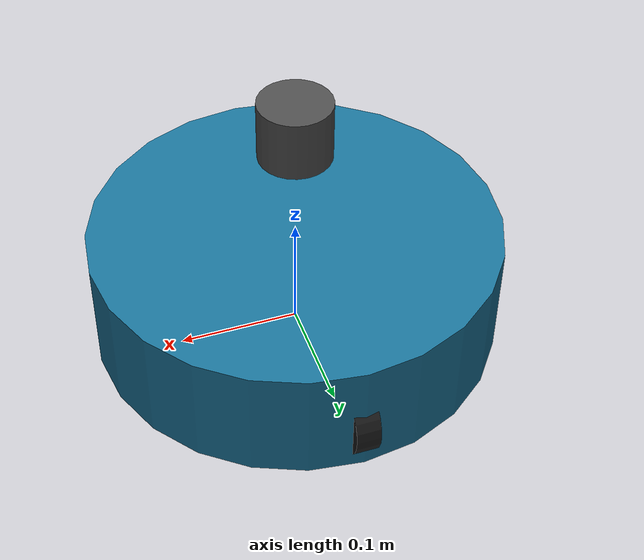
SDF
<?xml version="1.0"?>
<sdf version="1.8">
  <model name="turtlebot3_waffle_gz">
    <pose>0 0 0 0 0 0</pose>
    <static>false</static>

    <link name="base_link">
      <pose>0 0 0.05 0 0 0</pose>
      <inertial>
        <mass>1.0</mass>
        <inertia>
          <ixx>0.02</ixx>
          <iyy>0.04</iyy>
          <izz>0.04</izz>
        </inertia>
      </inertial>
      <collision name="base_collision">
        <geometry>
          <cylinder>
            <radius>0.17</radius>
            <length>0.10</length>
          </cylinder>
        </geometry>
      </collision>
      <visual name="base_visual">
        <geometry>
          <cylinder>
            <radius>0.17</radius>
            <length>0.10</length>
          </cylinder>
        </geometry>
        <material>
          <ambient>0.1 0.45 0.6 1</ambient>
          <diffuse>0.1 0.45 0.6 1</diffuse>
        </material>
      </visual>
    </link>

    <link name="left_wheel_link">
      <pose>0 0.144 0.033 0 1.5708 0</pose>
      <inertial>
        <mass>0.2</mass>
        <inertia>
          <ixx>0.0005</ixx>
          <iyy>0.0005</iyy>
          <izz>0.0005</izz>
        </inertia>
      </inertial>
      <collision name="left_wheel_collision">
        <geometry>
          <cylinder>
            <radius>0.033</radius>
            <length>0.02</length>
          </cylinder>
        </geometry>
      </collision>
      <visual name="left_wheel_visual">
        <geometry>
          <cylinder>
            <radius>0.033</radius>
            <length>0.02</length>
          </cylinder>
        </geometry>
        <material>
          <ambient>0.1 0.1 0.1 1</ambient>
          <diffuse>0.1 0.1 0.1 1</diffuse>
        </material>
      </visual>
    </link>

    <link name="right_wheel_link">
      <pose>0 -0.144 0.033 0 1.5708 0</pose>
      <inertial>
        <mass>0.2</mass>
        <inertia>
          <ixx>0.0005</ixx>
          <iyy>0.0005</iyy>
          <izz>0.0005</izz>
        </inertia>
      </inertial>
      <collision name="right_wheel_collision">
        <geometry>
          <cylinder>
            <radius>0.033</radius>
            <length>0.02</length>
          </cylinder>
        </geometry>
      </collision>
      <visual name="right_wheel_visual">
        <geometry>
          <cylinder>
            <radius>0.033</radius>
            <length>0.02</length>
          </cylinder>
        </geometry>
        <material>
          <ambient>0.1 0.1 0.1 1</ambient>
          <diffuse>0.1 0.1 0.1 1</diffuse>
        </material>
      </visual>
    </link>

    <joint name="left_wheel_joint" type="revolute">
      <parent>base_link</parent>
      <child>left_wheel_link</child>
      <pose>0 0 0 0 0 0</pose>
      <axis>
        <xyz>0 1 0</xyz>
        <limit>
          <lower>-1e+16</lower>
          <upper>1e+16</upper>
        </limit>
      </axis>
    </joint>

    <joint name="right_wheel_joint" type="revolute">
      <parent>base_link</parent>
      <child>right_wheel_link</child>
      <pose>0 0 0 0 0 0</pose>
      <axis>
        <xyz>0 1 0</xyz>
        <limit>
          <lower>-1e+16</lower>
          <upper>1e+16</upper>
        </limit>
      </axis>
    </joint>

    <link name="lidar_link">
      <pose>0 0 0.20 0 0 0</pose>
      <inertial>
        <mass>0.05</mass>
        <inertia>
          <ixx>0.0001</ixx>
          <iyy>0.0001</iyy>
          <izz>0.0001</izz>
        </inertia>
      </inertial>
      <visual name="lidar_visual">
        <geometry>
          <cylinder>
            <radius>0.03</radius>
            <length>0.05</length>
          </cylinder>
        </geometry>
        <material>
          <ambient>0.3 0.3 0.3 1</ambient>
          <diffuse>0.3 0.3 0.3 1</diffuse>
        </material>
      </visual>
      <collision name="lidar_collision">
        <geometry>
          <cylinder>
            <radius>0.03</radius>
            <length>0.05</length>
          </cylinder>
        </geometry>
      </collision>
      <sensor name="gpu_lidar" type="gpu_lidar">
        <pose>0 0 0 0 0 0</pose>
        <topic>scan</topic>
        <update_rate>15</update_rate>
        <lidar>
          <scan>
            <horizontal>
              <samples>720</samples>
              <resolution>1</resolution>
              <min_angle>-3.14159</min_angle>
              <max_angle>3.14159</max_angle>
            </horizontal>
          </scan>
          <range>
            <min>0.12</min>
            <max>12.0</max>
            <resolution>0.01</resolution>
          </range>
        </lidar>
        <always_on>1</always_on>
        <visualize>true</visualize>
      </sensor>
    </link>

    <joint name="lidar_joint" type="fixed">
      <parent>base_link</parent>
      <child>lidar_link</child>
    </joint>

    <plugin name="diff_drive" filename="gz-sim-diff-drive-system">
      <left_joint>left_wheel_joint</left_joint>
      <right_joint>right_wheel_joint</right_joint>
      <wheel_separation>0.287</wheel_separation>
      <wheel_radius>0.033</wheel_radius>
      <odom_publish_frequency>50</odom_publish_frequency>
      <max_linear_acceleration>2.5</max_linear_acceleration>
      <max_angular_acceleration>3.2</max_angular_acceleration>
      <max_linear_velocity>0.26</max_linear_velocity>
      <max_angular_velocity>1.8</max_angular_velocity>
    </plugin>

  </model>
</sdf>
